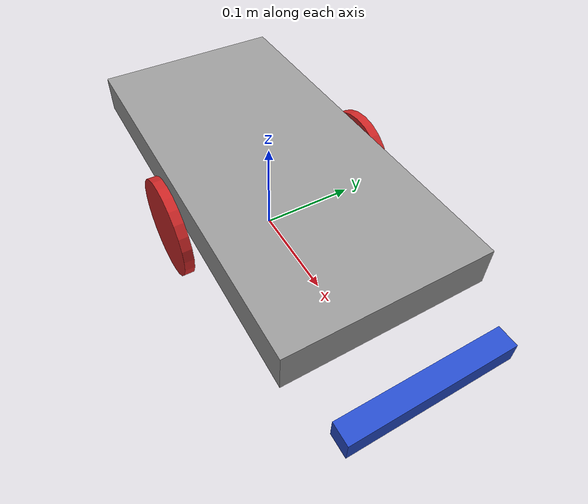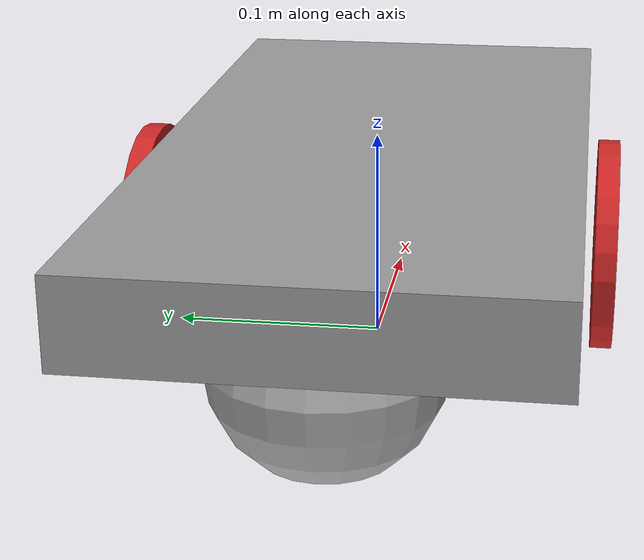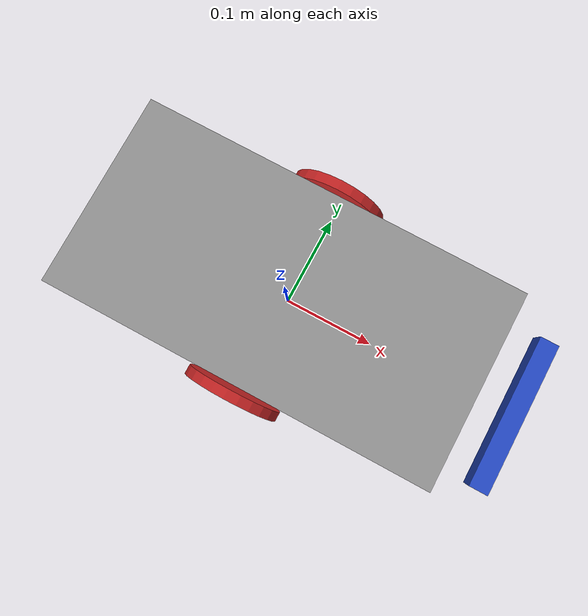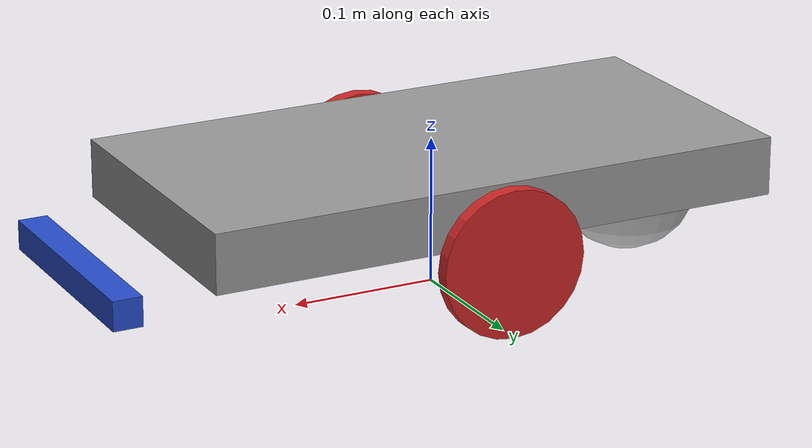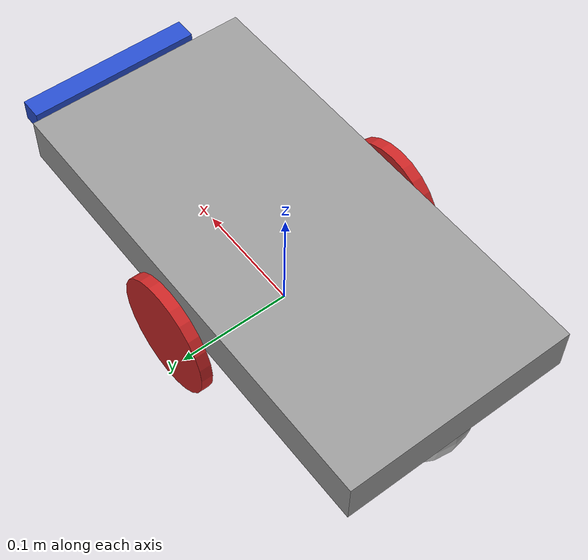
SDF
<?xml version='1.0'?>
<sdf version="1.4">
  <model name="line_robot">
    <link name="body_link">
      <pose>0 0 0.08 0 0 0</pose>
      <inertial>
        <pose>-0.1 0 0 0 0 0</pose>
        <mass>1.0</mass>
        <inertia>
          <ixx>0.1</ixx>
          <ixy>0.0</ixy>
          <ixz>0.0</ixz>
          <iyy>0.1</iyy>
          <iyz>0.0</iyz>
          <izz>0.1</izz>
        </inertia>
      </inertial>
      <collision name="collision">
        <geometry>
          <box>
            <size>0.4 0.2 0.04</size>
          </box>
        </geometry>
      </collision>
      <visual name="visual">
        <geometry>
          <box>
            <size>0.4 0.2 0.04</size>
          </box>
        </geometry>
        <material>
          <script>
            <uri>file://media/materials/scripts/gazebo.material</uri>
            <name>Gazebo/Grey</name>
          </script>
        </material>
      </visual>
    </link>

    <link name="left_wheel_link">
      <pose>0 0.11 0.05 1.5707 0 0</pose>
      <inertial>
        <mass>0.1</mass>
        <inertia>
          <ixx>0.01</ixx>
          <ixy>0.0</ixy>
          <ixz>0.0</ixz>
          <iyy>0.01</iyy>
          <iyz>0.0</iyz>
          <izz>0.01</izz>
        </inertia>
      </inertial>
      <collision name="collision">
        <geometry>
          <cylinder>
            <radius>0.05</radius>
            <length>0.01</length>
          </cylinder>
        </geometry>
      </collision>
      <visual name="visual">
        <geometry>
          <cylinder>
            <radius>0.05</radius>
            <length>0.01</length>
          </cylinder>
        </geometry>
        <material>
          <script>
            <uri>file://media/materials/scripts/gazebo.material</uri>
            <name>Gazebo/Red</name>
          </script>
        </material>
      </visual>
    </link>

    <link name="right_wheel_link">
      <pose>0 -0.11 0.05 1.5707 0 0</pose>
      <inertial>
        <mass>0.1</mass>
        <inertia>
          <ixx>0.01</ixx>
          <ixy>0.0</ixy>
          <ixz>0.0</ixz>
          <iyy>0.01</iyy>
          <iyz>0.0</iyz>
          <izz>0.01</izz>
        </inertia>
      </inertial>
      <collision name="collision">
        <geometry>
          <cylinder>
            <radius>0.05</radius>
            <length>0.01</length>
          </cylinder>
        </geometry>
      </collision>
      <visual name="visual">
        <geometry>
          <cylinder>
            <radius>0.05</radius>
            <length>0.01</length>
          </cylinder>
        </geometry>
        <material>
          <script>
            <uri>file://media/materials/scripts/gazebo.material</uri>
            <name>Gazebo/Red</name>
          </script>
        </material>
      </visual>
    </link>

    <link name="caster_link">
      <pose>-0.15 0 0.05 0 0 0</pose>
      <inertial>
        <mass>0.1</mass>
        <inertia>
          <ixx>0.01</ixx>
          <ixy>0.0</ixy>
          <ixz>0.0</ixz>
          <iyy>0.01</iyy>
          <iyz>0.0</iyz>
          <izz>0.01</izz>
        </inertia>
      </inertial>
      <collision name="collision">
        <geometry>
          <sphere>
            <radius>0.05</radius>
          </sphere>
        </geometry>
        <surface>
          <friction>
            <ode>
              <mu>0.01</mu>
              <mu2>0.01</mu2>
            </ode>
          </friction>
        </surface>
      </collision>
      <visual name="visual">
        <geometry>
          <sphere>
            <radius>0.05</radius>
          </sphere>
        </geometry>
      </visual>
    </link>

    <link name="front_sensor_link">
      <pose>0.25 0 0.05 0 1.5707 0</pose>
      <inertial>
        <mass>0.1</mass>
        <inertia>
          <ixx>0.01</ixx>
          <ixy>0.0</ixy>
          <ixz>0.0</ixz>
          <iyy>0.01</iyy>
          <iyz>0.0</iyz>
          <izz>0.01</izz>
        </inertia>
      </inertial>
      <collision name="collision">
        <geometry>
          <box>
            <size>0.02 0.16 0.02</size>
          </box>
        </geometry>
      </collision>
      <visual name="visual">
        <geometry>
          <box>
            <size>0.02 0.16 0.02</size>
          </box>
        </geometry>
        <material>
          <script>
            <uri>file://media/materials/scripts/gazebo.material</uri>
            <name>Gazebo/Blue</name>
          </script>
        </material>
      </visual>

      <sensor
          type="camera"
          name="camera1">
        <pose>-0.2 0 0 0 0 0</pose>
        <update_rate>10.0</update_rate>
        <always_on>true</always_on>
        <visualize>true</visualize>
        <camera name="head">
          <horizontal_fov>0.64</horizontal_fov>
          <image>
            <width>100</width>
            <height>1</height>
            <format>R8G8B8</format>
          </image>
          <clip>
            <near>0.221</near>
            <far>300</far>
          </clip>
          <noise>
            <type>gaussian</type>
            <mean>0.0</mean>
            <stddev>0.007</stddev>
          </noise>
        </camera>
      </sensor>
    </link>

    <joint
        name='left_wheel_joint'
        type='revolute'>
      <parent>body_link</parent>
      <child>left_wheel_link</child>
      <pose>0 0 0.5 0 0 0</pose>
      <axis>
        <use_parent_model_frame>true</use_parent_model_frame>
        <xyz>0 1 0</xyz>
      </axis>
    </joint>

    <joint
        name='right_wheel_joint'
        type='revolute'>
      <parent>body_link</parent>
      <child>right_wheel_link</child>
      <pose>0 0 0.5 0 0 0</pose>
      <axis>
        <use_parent_model_frame>true</use_parent_model_frame>
        <xyz>0 1 0</xyz>
      </axis>
    </joint>

    <joint
        name='caster_joint'
        type='fixed'>
      <parent>body_link</parent>
      <child>caster_link</child>
      <pose>0 0 0 0 0 0</pose>
      <axis>
        <use_parent_model_frame>true</use_parent_model_frame>
        <xyz>0 1 0</xyz>
      </axis>
    </joint>

    <joint
        name='front_sensor_joint'
        type='fixed'>
      <parent>body_link</parent>
      <child>front_sensor_link</child>
      <pose>0 0 0 0 0 0</pose>
      <axis>
        <use_parent_model_frame>true</use_parent_model_frame>
        <xyz>0 1 0</xyz>
      </axis>
    </joint>

    <plugin
        name='diff_drive'
        filename='libdiff_drive_controller_plugin.so'>
      <left_joint>left_wheel_joint</left_joint>
      <right_joint>right_wheel_joint</right_joint>

      <wheel_separation>1.25</wheel_separation>
      <wheel_diameter>0.6</wheel_diameter>

      <max_wheel_torque>20</max_wheel_torque>
      <max_wheel_acceleration>1.0</max_wheel_acceleration>

      <!-- output -->
      <publish_odom>true</publish_odom>
      <publish_odom_tf>true</publish_odom_tf>
      <publish_wheel_tf>true</publish_wheel_tf>

      <odometry_frame>odom_demo</odometry_frame>
      <robot_base_frame>chassis</robot_base_frame>
    </plugin>

  </model>
</sdf>
